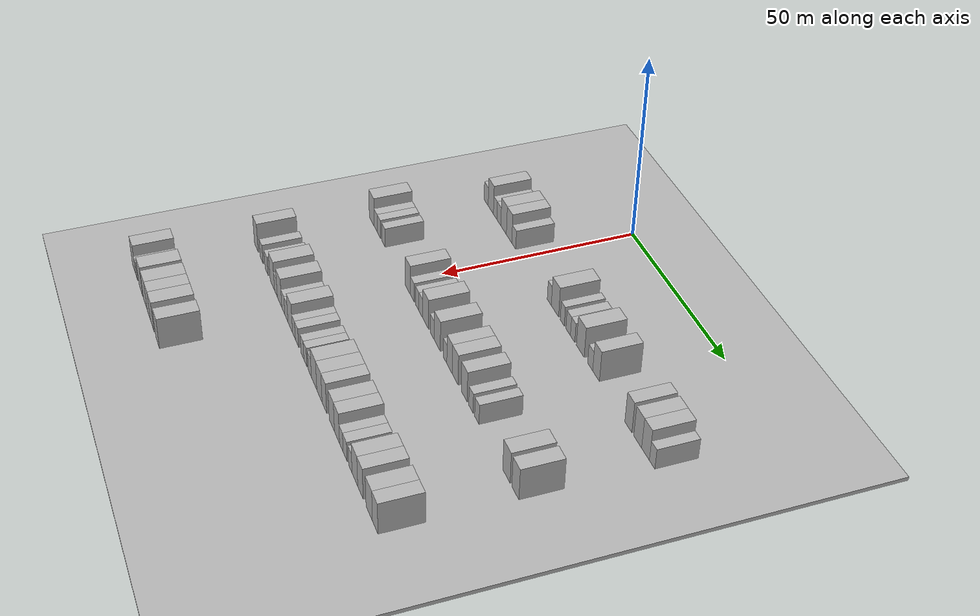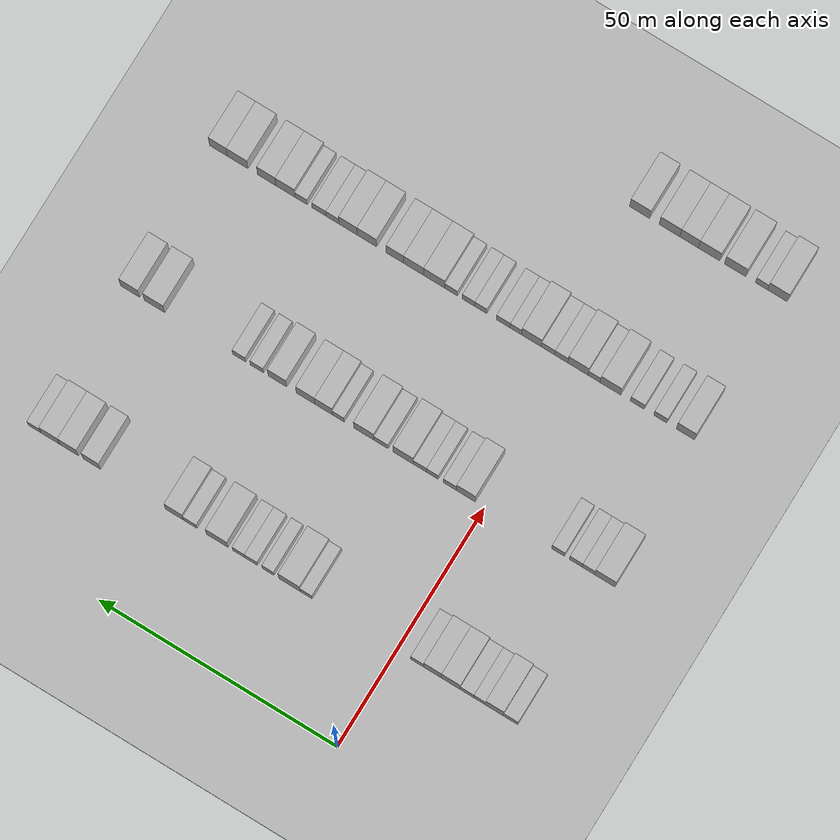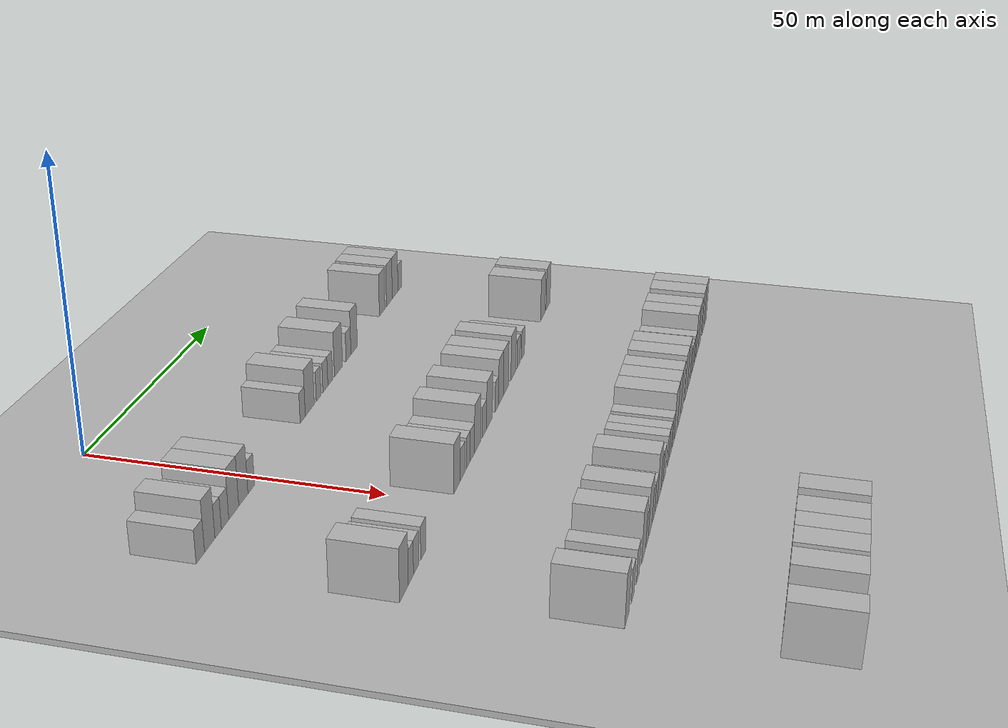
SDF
<sdf version="1.6">
 <world name="default">
  <include><name>ground_plane_1</name><uri>model://HANNAS_ground_plane</uri></include>
  <include>
   <name>ground_plane_2</name>
   <uri>model://HANNAS_ground_plane</uri>
   <pose>100 0 0  0 0 0</pose>
  </include>
  <model name="building_113">
   <static>1</static>
   <pose>25.0000 -23.7866 0 0.000000 0.000000 0.000000</pose>
   <link name="link">
    <pose>0 0 3.00 0 0 0</pose>
    <collision name="collision"><geometry><box><size>10.0000 2.9884 6.0000</size></box></geometry></collision>
    <visual name="visual">
     <cast_shadows>0</cast_shadows>
     <geometry><box><size>10.0000 2.9884 6.0000</size></box></geometry>
     <material>
      <script>
       <uri>model://HANNAS_wall/materials/scripts</uri>
       <uri>model://HANNAS_wall/materials/textures</uri>
       <name>vrc/HANNAS_wall</name>
      </script>
     </material>
    </visual>
   </link>
  </model>
  <model name="building_114">
   <static>1</static>
   <pose>25.0000 -20.4014 0 0.000000 0.000000 0.000000</pose>
   <link name="link">
    <pose>0 0 4.50 0 0 0</pose>
    <collision name="collision"><geometry><box><size>10.0000 3.7819 9.0000</size></box></geometry></collision>
    <visual name="visual">
     <cast_shadows>0</cast_shadows>
     <geometry><box><size>10.0000 3.7819 9.0000</size></box></geometry>
     <material>
      <script>
       <uri>model://HANNAS_wall/materials/scripts</uri>
       <uri>model://HANNAS_wall/materials/textures</uri>
       <name>vrc/HANNAS_wall</name>
      </script>
     </material>
    </visual>
   </link>
  </model>
  <model name="building_115">
   <static>1</static>
   <pose>25.0000 -17.2990 0 0.000000 0.000000 0.000000</pose>
   <link name="link">
    <pose>0 0 3.00 0 0 0</pose>
    <collision name="collision"><geometry><box><size>10.0000 2.4229 6.0000</size></box></geometry></collision>
    <visual name="visual">
     <cast_shadows>0</cast_shadows>
     <geometry><box><size>10.0000 2.4229 6.0000</size></box></geometry>
     <material>
      <script>
       <uri>model://HANNAS_wall/materials/scripts</uri>
       <uri>model://HANNAS_wall/materials/textures</uri>
       <name>vrc/HANNAS_wall</name>
      </script>
     </material>
    </visual>
   </link>
  </model>
  <model name="building_116">
   <static>1</static>
   <pose>25.0000 -14.6808 0 0.000000 0.000000 0.000000</pose>
   <link name="link">
    <pose>0 0 3.00 0 0 0</pose>
    <collision name="collision"><geometry><box><size>10.0000 2.8136 6.0000</size></box></geometry></collision>
    <visual name="visual">
     <cast_shadows>0</cast_shadows>
     <geometry><box><size>10.0000 2.8136 6.0000</size></box></geometry>
     <material>
      <script>
       <uri>model://HANNAS_wall/materials/scripts</uri>
       <uri>model://HANNAS_wall/materials/textures</uri>
       <name>vrc/HANNAS_wall</name>
      </script>
     </material>
    </visual>
   </link>
  </model>
  <model name="building_117">
   <static>1</static>
   <pose>25.0000 -11.3227 0 0.000000 0.000000 0.000000</pose>
   <link name="link">
    <pose>0 0 4.50 0 0 0</pose>
    <collision name="collision"><geometry><box><size>10.0000 3.9026 9.0000</size></box></geometry></collision>
    <visual name="visual">
     <cast_shadows>0</cast_shadows>
     <geometry><box><size>10.0000 3.9026 9.0000</size></box></geometry>
     <material>
      <script>
       <uri>model://HANNAS_wall/materials/scripts</uri>
       <uri>model://HANNAS_wall/materials/textures</uri>
       <name>vrc/HANNAS_wall</name>
      </script>
     </material>
    </visual>
   </link>
  </model>
  <model name="building_118">
   <static>1</static>
   <pose>25.0000 -7.5228 0 0.000000 0.000000 0.000000</pose>
   <link name="link">
    <pose>0 0 4.50 0 0 0</pose>
    <collision name="collision"><geometry><box><size>10.0000 3.6970 9.0000</size></box></geometry></collision>
    <visual name="visual">
     <cast_shadows>0</cast_shadows>
     <geometry><box><size>10.0000 3.6970 9.0000</size></box></geometry>
     <material>
      <script>
       <uri>model://HANNAS_wall/materials/scripts</uri>
       <uri>model://HANNAS_wall/materials/textures</uri>
       <name>vrc/HANNAS_wall</name>
      </script>
     </material>
    </visual>
   </link>
  </model>
  <model name="building_119">
   <static>1</static>
   <pose>25.0000 -4.3048 0 0.000000 0.000000 0.000000</pose>
   <link name="link">
    <pose>0 0 3.00 0 0 0</pose>
    <collision name="collision"><geometry><box><size>10.0000 2.7391 6.0000</size></box></geometry></collision>
    <visual name="visual">
     <cast_shadows>0</cast_shadows>
     <geometry><box><size>10.0000 2.7391 6.0000</size></box></geometry>
     <material>
      <script>
       <uri>model://HANNAS_wall/materials/scripts</uri>
       <uri>model://HANNAS_wall/materials/textures</uri>
       <name>vrc/HANNAS_wall</name>
      </script>
     </material>
    </visual>
   </link>
  </model>
  <model name="building_120">
   <static>1</static>
   <pose>25.0000 18.8678 0 0.000000 0.000000 0.000000</pose>
   <link name="link">
    <pose>0 0 3.00 0 0 0</pose>
    <collision name="collision"><geometry><box><size>10.0000 2.5354 6.0000</size></box></geometry></collision>
    <visual name="visual">
     <cast_shadows>0</cast_shadows>
     <geometry><box><size>10.0000 2.5354 6.0000</size></box></geometry>
     <material>
      <script>
       <uri>model://HANNAS_wall/materials/scripts</uri>
       <uri>model://HANNAS_wall/materials/textures</uri>
       <name>vrc/HANNAS_wall</name>
      </script>
     </material>
    </visual>
   </link>
  </model>
  <model name="building_121">
   <static>1</static>
   <pose>25.0000 22.3756 0 0.000000 0.000000 0.000000</pose>
   <link name="link">
    <pose>0 0 4.50 0 0 0</pose>
    <collision name="collision"><geometry><box><size>10.0000 4.4800 9.0000</size></box></geometry></collision>
    <visual name="visual">
     <cast_shadows>0</cast_shadows>
     <geometry><box><size>10.0000 4.4800 9.0000</size></box></geometry>
     <material>
      <script>
       <uri>model://HANNAS_wall/materials/scripts</uri>
       <uri>model://HANNAS_wall/materials/textures</uri>
       <name>vrc/HANNAS_wall</name>
      </script>
     </material>
    </visual>
   </link>
  </model>
  <model name="building_122">
   <static>1</static>
   <pose>25.0000 26.8315 0 0.000000 0.000000 0.000000</pose>
   <link name="link">
    <pose>0 0 3.00 0 0 0</pose>
    <collision name="collision"><geometry><box><size>10.0000 2.4318 6.0000</size></box></geometry></collision>
    <visual name="visual">
     <cast_shadows>0</cast_shadows>
     <geometry><box><size>10.0000 2.4318 6.0000</size></box></geometry>
     <material>
      <script>
       <uri>model://HANNAS_wall/materials/scripts</uri>
       <uri>model://HANNAS_wall/materials/textures</uri>
       <name>vrc/HANNAS_wall</name>
      </script>
     </material>
    </visual>
   </link>
  </model>
  <model name="building_123">
   <static>1</static>
   <pose>25.0000 30.3768 0 0.000000 0.000000 0.000000</pose>
   <link name="link">
    <pose>0 0 3.00 0 0 0</pose>
    <collision name="collision"><geometry><box><size>10.0000 2.6590 6.0000</size></box></geometry></collision>
    <visual name="visual">
     <cast_shadows>0</cast_shadows>
     <geometry><box><size>10.0000 2.6590 6.0000</size></box></geometry>
     <material>
      <script>
       <uri>model://HANNAS_wall/materials/scripts</uri>
       <uri>model://HANNAS_wall/materials/textures</uri>
       <name>vrc/HANNAS_wall</name>
      </script>
     </material>
    </visual>
   </link>
  </model>
  <model name="building_124">
   <static>1</static>
   <pose>25.0000 32.9831 0 0.000000 0.000000 0.000000</pose>
   <link name="link">
    <pose>0 0 3.00 0 0 0</pose>
    <collision name="collision"><geometry><box><size>10.0000 2.5535 6.0000</size></box></geometry></collision>
    <visual name="visual">
     <cast_shadows>0</cast_shadows>
     <geometry><box><size>10.0000 2.5535 6.0000</size></box></geometry>
     <material>
      <script>
       <uri>model://HANNAS_wall/materials/scripts</uri>
       <uri>model://HANNAS_wall/materials/textures</uri>
       <name>vrc/HANNAS_wall</name>
      </script>
     </material>
    </visual>
   </link>
  </model>
  <model name="building_125">
   <static>1</static>
   <pose>25.0000 37.5008 0 0.000000 0.000000 0.000000</pose>
   <link name="link">
    <pose>0 0 4.50 0 0 0</pose>
    <collision name="collision"><geometry><box><size>10.0000 4.4819 9.0000</size></box></geometry></collision>
    <visual name="visual">
     <cast_shadows>0</cast_shadows>
     <geometry><box><size>10.0000 4.4819 9.0000</size></box></geometry>
     <material>
      <script>
       <uri>model://HANNAS_wall/materials/scripts</uri>
       <uri>model://HANNAS_wall/materials/textures</uri>
       <name>vrc/HANNAS_wall</name>
      </script>
     </material>
    </visual>
   </link>
  </model>
  <model name="building_126">
   <static>1</static>
   <pose>25.0000 43.1531 0 0.000000 0.000000 0.000000</pose>
   <link name="link">
    <pose>0 0 3.00 0 0 0</pose>
    <collision name="collision"><geometry><box><size>10.0000 2.8227 6.0000</size></box></geometry></collision>
    <visual name="visual">
     <cast_shadows>0</cast_shadows>
     <geometry><box><size>10.0000 2.8227 6.0000</size></box></geometry>
     <material>
      <script>
       <uri>model://HANNAS_wall/materials/scripts</uri>
       <uri>model://HANNAS_wall/materials/textures</uri>
       <name>vrc/HANNAS_wall</name>
      </script>
     </material>
    </visual>
   </link>
  </model>
  <model name="building_127">
   <static>1</static>
   <pose>25.0000 46.4562 0 0.000000 0.000000 0.000000</pose>
   <link name="link">
    <pose>0 0 4.50 0 0 0</pose>
    <collision name="collision"><geometry><box><size>10.0000 3.7836 9.0000</size></box></geometry></collision>
    <visual name="visual">
     <cast_shadows>0</cast_shadows>
     <geometry><box><size>10.0000 3.7836 9.0000</size></box></geometry>
     <material>
      <script>
       <uri>model://HANNAS_wall/materials/scripts</uri>
       <uri>model://HANNAS_wall/materials/textures</uri>
       <name>vrc/HANNAS_wall</name>
      </script>
     </material>
    </visual>
   </link>
  </model>
  <model name="building_128">
   <static>1</static>
   <pose>25.0000 63.8147 0 0.000000 0.000000 0.000000</pose>
   <link name="link">
    <pose>0 0 4.50 0 0 0</pose>
    <collision name="collision"><geometry><box><size>10.0000 3.6445 9.0000</size></box></geometry></collision>
    <visual name="visual">
     <cast_shadows>0</cast_shadows>
     <geometry><box><size>10.0000 3.6445 9.0000</size></box></geometry>
     <material>
      <script>
       <uri>model://HANNAS_wall/materials/scripts</uri>
       <uri>model://HANNAS_wall/materials/textures</uri>
       <name>vrc/HANNAS_wall</name>
      </script>
     </material>
    </visual>
   </link>
  </model>
  <model name="building_129">
   <static>1</static>
   <pose>25.0000 68.6134 0 0.000000 0.000000 0.000000</pose>
   <link name="link">
    <pose>0 0 4.50 0 0 0</pose>
    <collision name="collision"><geometry><box><size>10.0000 3.9528 9.0000</size></box></geometry></collision>
    <visual name="visual">
     <cast_shadows>0</cast_shadows>
     <geometry><box><size>10.0000 3.9528 9.0000</size></box></geometry>
     <material>
      <script>
       <uri>model://HANNAS_wall/materials/scripts</uri>
       <uri>model://HANNAS_wall/materials/textures</uri>
       <name>vrc/HANNAS_wall</name>
      </script>
     </material>
    </visual>
   </link>
  </model>
  <model name="building_130">
   <static>1</static>
   <pose>25.0000 72.5409 0 0.000000 0.000000 0.000000</pose>
   <link name="link">
    <pose>0 0 4.50 0 0 0</pose>
    <collision name="collision"><geometry><box><size>10.0000 3.9024 9.0000</size></box></geometry></collision>
    <visual name="visual">
     <cast_shadows>0</cast_shadows>
     <geometry><box><size>10.0000 3.9024 9.0000</size></box></geometry>
     <material>
      <script>
       <uri>model://HANNAS_wall/materials/scripts</uri>
       <uri>model://HANNAS_wall/materials/textures</uri>
       <name>vrc/HANNAS_wall</name>
      </script>
     </material>
    </visual>
   </link>
  </model>
  <model name="building_131">
   <static>1</static>
   <pose>25.0000 75.8397 0 0.000000 0.000000 0.000000</pose>
   <link name="link">
    <pose>0 0 3.00 0 0 0</pose>
    <collision name="collision"><geometry><box><size>10.0000 2.6950 6.0000</size></box></geometry></collision>
    <visual name="visual">
     <cast_shadows>0</cast_shadows>
     <geometry><box><size>10.0000 2.6950 6.0000</size></box></geometry>
     <material>
      <script>
       <uri>model://HANNAS_wall/materials/scripts</uri>
       <uri>model://HANNAS_wall/materials/textures</uri>
       <name>vrc/HANNAS_wall</name>
      </script>
     </material>
    </visual>
   </link>
  </model>
  <model name="building_340">
   <static>1</static>
   <pose>55.0000 -25.1099 0 0.000000 0.000000 0.000000</pose>
   <link name="link">
    <pose>0 0 4.50 0 0 0</pose>
    <collision name="collision"><geometry><box><size>10.0000 4.2603 9.0000</size></box></geometry></collision>
    <visual name="visual">
     <cast_shadows>0</cast_shadows>
     <geometry><box><size>10.0000 4.2603 9.0000</size></box></geometry>
     <material>
      <script>
       <uri>model://HANNAS_wall/materials/scripts</uri>
       <uri>model://HANNAS_wall/materials/textures</uri>
       <name>vrc/HANNAS_wall</name>
      </script>
     </material>
    </visual>
   </link>
  </model>
  <model name="building_341">
   <static>1</static>
   <pose>55.0000 -21.6781 0 0.000000 0.000000 0.000000</pose>
   <link name="link">
    <pose>0 0 3.00 0 0 0</pose>
    <collision name="collision"><geometry><box><size>10.0000 2.6032 6.0000</size></box></geometry></collision>
    <visual name="visual">
     <cast_shadows>0</cast_shadows>
     <geometry><box><size>10.0000 2.6032 6.0000</size></box></geometry>
     <material>
      <script>
       <uri>model://HANNAS_wall/materials/scripts</uri>
       <uri>model://HANNAS_wall/materials/textures</uri>
       <name>vrc/HANNAS_wall</name>
      </script>
     </material>
    </visual>
   </link>
  </model>
  <model name="building_342">
   <static>1</static>
   <pose>55.0000 -19.0357 0 0.000000 0.000000 0.000000</pose>
   <link name="link">
    <pose>0 0 3.00 0 0 0</pose>
    <collision name="collision"><geometry><box><size>10.0000 2.6817 6.0000</size></box></geometry></collision>
    <visual name="visual">
     <cast_shadows>0</cast_shadows>
     <geometry><box><size>10.0000 2.6817 6.0000</size></box></geometry>
     <material>
      <script>
       <uri>model://HANNAS_wall/materials/scripts</uri>
       <uri>model://HANNAS_wall/materials/textures</uri>
       <name>vrc/HANNAS_wall</name>
      </script>
     </material>
    </visual>
   </link>
  </model>
  <model name="building_343">
   <static>1</static>
   <pose>55.0000 -15.3449 0 0.000000 0.000000 0.000000</pose>
   <link name="link">
    <pose>0 0 3.00 0 0 0</pose>
    <collision name="collision"><geometry><box><size>10.0000 2.7000 6.0000</size></box></geometry></collision>
    <visual name="visual">
     <cast_shadows>0</cast_shadows>
     <geometry><box><size>10.0000 2.7000 6.0000</size></box></geometry>
     <material>
      <script>
       <uri>model://HANNAS_wall/materials/scripts</uri>
       <uri>model://HANNAS_wall/materials/textures</uri>
       <name>vrc/HANNAS_wall</name>
      </script>
     </material>
    </visual>
   </link>
  </model>
  <model name="building_344">
   <static>1</static>
   <pose>55.0000 3.9220 0 0.000000 0.000000 0.000000</pose>
   <link name="link">
    <pose>0 0 4.50 0 0 0</pose>
    <collision name="collision"><geometry><box><size>10.0000 3.9446 9.0000</size></box></geometry></collision>
    <visual name="visual">
     <cast_shadows>0</cast_shadows>
     <geometry><box><size>10.0000 3.9446 9.0000</size></box></geometry>
     <material>
      <script>
       <uri>model://HANNAS_wall/materials/scripts</uri>
       <uri>model://HANNAS_wall/materials/textures</uri>
       <name>vrc/HANNAS_wall</name>
      </script>
     </material>
    </visual>
   </link>
  </model>
  <model name="building_345">
   <static>1</static>
   <pose>55.0000 7.2914 0 0.000000 0.000000 0.000000</pose>
   <link name="link">
    <pose>0 0 3.00 0 0 0</pose>
    <collision name="collision"><geometry><box><size>10.0000 2.7942 6.0000</size></box></geometry></collision>
    <visual name="visual">
     <cast_shadows>0</cast_shadows>
     <geometry><box><size>10.0000 2.7942 6.0000</size></box></geometry>
     <material>
      <script>
       <uri>model://HANNAS_wall/materials/scripts</uri>
       <uri>model://HANNAS_wall/materials/textures</uri>
       <name>vrc/HANNAS_wall</name>
      </script>
     </material>
    </visual>
   </link>
  </model>
  <model name="building_346">
   <static>1</static>
   <pose>55.0000 10.9411 0 0.000000 0.000000 0.000000</pose>
   <link name="link">
    <pose>0 0 3.00 0 0 0</pose>
    <collision name="collision"><geometry><box><size>10.0000 2.5052 6.0000</size></box></geometry></collision>
    <visual name="visual">
     <cast_shadows>0</cast_shadows>
     <geometry><box><size>10.0000 2.5052 6.0000</size></box></geometry>
     <material>
      <script>
       <uri>model://HANNAS_wall/materials/scripts</uri>
       <uri>model://HANNAS_wall/materials/textures</uri>
       <name>vrc/HANNAS_wall</name>
      </script>
     </material>
    </visual>
   </link>
  </model>
  <model name="building_347">
   <static>1</static>
   <pose>55.0000 13.5855 0 0.000000 0.000000 0.000000</pose>
   <link name="link">
    <pose>0 0 3.00 0 0 0</pose>
    <collision name="collision"><geometry><box><size>10.0000 2.7836 6.0000</size></box></geometry></collision>
    <visual name="visual">
     <cast_shadows>0</cast_shadows>
     <geometry><box><size>10.0000 2.7836 6.0000</size></box></geometry>
     <material>
      <script>
       <uri>model://HANNAS_wall/materials/scripts</uri>
       <uri>model://HANNAS_wall/materials/textures</uri>
       <name>vrc/HANNAS_wall</name>
      </script>
     </material>
    </visual>
   </link>
  </model>
  <model name="building_348">
   <static>1</static>
   <pose>55.0000 17.0925 0 0.000000 0.000000 0.000000</pose>
   <link name="link">
    <pose>0 0 4.50 0 0 0</pose>
    <collision name="collision"><geometry><box><size>10.0000 4.2303 9.0000</size></box></geometry></collision>
    <visual name="visual">
     <cast_shadows>0</cast_shadows>
     <geometry><box><size>10.0000 4.2303 9.0000</size></box></geometry>
     <material>
      <script>
       <uri>model://HANNAS_wall/materials/scripts</uri>
       <uri>model://HANNAS_wall/materials/textures</uri>
       <name>vrc/HANNAS_wall</name>
      </script>
     </material>
    </visual>
   </link>
  </model>
  <model name="building_349">
   <static>1</static>
   <pose>55.0000 21.6982 0 0.000000 0.000000 0.000000</pose>
   <link name="link">
    <pose>0 0 3.00 0 0 0</pose>
    <collision name="collision"><geometry><box><size>10.0000 2.9812 6.0000</size></box></geometry></collision>
    <visual name="visual">
     <cast_shadows>0</cast_shadows>
     <geometry><box><size>10.0000 2.9812 6.0000</size></box></geometry>
     <material>
      <script>
       <uri>model://HANNAS_wall/materials/scripts</uri>
       <uri>model://HANNAS_wall/materials/textures</uri>
       <name>vrc/HANNAS_wall</name>
      </script>
     </material>
    </visual>
   </link>
  </model>
  <model name="building_350">
   <static>1</static>
   <pose>55.0000 25.2922 0 0.000000 0.000000 0.000000</pose>
   <link name="link">
    <pose>0 0 4.50 0 0 0</pose>
    <collision name="collision"><geometry><box><size>10.0000 4.2067 9.0000</size></box></geometry></collision>
    <visual name="visual">
     <cast_shadows>0</cast_shadows>
     <geometry><box><size>10.0000 4.2067 9.0000</size></box></geometry>
     <material>
      <script>
       <uri>model://HANNAS_wall/materials/scripts</uri>
       <uri>model://HANNAS_wall/materials/textures</uri>
       <name>vrc/HANNAS_wall</name>
      </script>
     </material>
    </visual>
   </link>
  </model>
  <model name="building_351">
   <static>1</static>
   <pose>55.0000 30.6409 0 0.000000 0.000000 0.000000</pose>
   <link name="link">
    <pose>0 0 3.00 0 0 0</pose>
    <collision name="collision"><geometry><box><size>10.0000 2.4909 6.0000</size></box></geometry></collision>
    <visual name="visual">
     <cast_shadows>0</cast_shadows>
     <geometry><box><size>10.0000 2.4909 6.0000</size></box></geometry>
     <material>
      <script>
       <uri>model://HANNAS_wall/materials/scripts</uri>
       <uri>model://HANNAS_wall/materials/textures</uri>
       <name>vrc/HANNAS_wall</name>
      </script>
     </material>
    </visual>
   </link>
  </model>
  <model name="building_352">
   <static>1</static>
   <pose>55.0000 33.7163 0 0.000000 0.000000 0.000000</pose>
   <link name="link">
    <pose>0 0 4.50 0 0 0</pose>
    <collision name="collision"><geometry><box><size>10.0000 3.6598 9.0000</size></box></geometry></collision>
    <visual name="visual">
     <cast_shadows>0</cast_shadows>
     <geometry><box><size>10.0000 3.6598 9.0000</size></box></geometry>
     <material>
      <script>
       <uri>model://HANNAS_wall/materials/scripts</uri>
       <uri>model://HANNAS_wall/materials/textures</uri>
       <name>vrc/HANNAS_wall</name>
      </script>
     </material>
    </visual>
   </link>
  </model>
  <model name="building_353">
   <static>1</static>
   <pose>55.0000 37.5068 0 0.000000 0.000000 0.000000</pose>
   <link name="link">
    <pose>0 0 4.50 0 0 0</pose>
    <collision name="collision"><geometry><box><size>10.0000 3.9213 9.0000</size></box></geometry></collision>
    <visual name="visual">
     <cast_shadows>0</cast_shadows>
     <geometry><box><size>10.0000 3.9213 9.0000</size></box></geometry>
     <material>
      <script>
       <uri>model://HANNAS_wall/materials/scripts</uri>
       <uri>model://HANNAS_wall/materials/textures</uri>
       <name>vrc/HANNAS_wall</name>
      </script>
     </material>
    </visual>
   </link>
  </model>
  <model name="building_354">
   <static>1</static>
   <pose>55.0000 43.4093 0 0.000000 0.000000 0.000000</pose>
   <link name="link">
    <pose>0 0 4.50 0 0 0</pose>
    <collision name="collision"><geometry><box><size>10.0000 3.8836 9.0000</size></box></geometry></collision>
    <visual name="visual">
     <cast_shadows>0</cast_shadows>
     <geometry><box><size>10.0000 3.8836 9.0000</size></box></geometry>
     <material>
      <script>
       <uri>model://HANNAS_wall/materials/scripts</uri>
       <uri>model://HANNAS_wall/materials/textures</uri>
       <name>vrc/HANNAS_wall</name>
      </script>
     </material>
    </visual>
   </link>
  </model>
  <model name="building_355">
   <static>1</static>
   <pose>55.0000 47.7272 0 0.000000 0.000000 0.000000</pose>
   <link name="link">
    <pose>0 0 3.00 0 0 0</pose>
    <collision name="collision"><geometry><box><size>10.0000 2.7521 6.0000</size></box></geometry></collision>
    <visual name="visual">
     <cast_shadows>0</cast_shadows>
     <geometry><box><size>10.0000 2.7521 6.0000</size></box></geometry>
     <material>
      <script>
       <uri>model://HANNAS_wall/materials/scripts</uri>
       <uri>model://HANNAS_wall/materials/textures</uri>
       <name>vrc/HANNAS_wall</name>
      </script>
     </material>
    </visual>
   </link>
  </model>
  <model name="building_356">
   <static>1</static>
   <pose>55.0000 51.4668 0 0.000000 0.000000 0.000000</pose>
   <link name="link">
    <pose>0 0 3.00 0 0 0</pose>
    <collision name="collision"><geometry><box><size>10.0000 2.7271 6.0000</size></box></geometry></collision>
    <visual name="visual">
     <cast_shadows>0</cast_shadows>
     <geometry><box><size>10.0000 2.7271 6.0000</size></box></geometry>
     <material>
      <script>
       <uri>model://HANNAS_wall/materials/scripts</uri>
       <uri>model://HANNAS_wall/materials/textures</uri>
       <name>vrc/HANNAS_wall</name>
      </script>
     </material>
    </visual>
   </link>
  </model>
  <model name="building_357">
   <static>1</static>
   <pose>55.0000 69.2820 0 0.000000 0.000000 0.000000</pose>
   <link name="link">
    <pose>0 0 4.50 0 0 0</pose>
    <collision name="collision"><geometry><box><size>10.0000 4.3011 9.0000</size></box></geometry></collision>
    <visual name="visual">
     <cast_shadows>0</cast_shadows>
     <geometry><box><size>10.0000 4.3011 9.0000</size></box></geometry>
     <material>
      <script>
       <uri>model://HANNAS_wall/materials/scripts</uri>
       <uri>model://HANNAS_wall/materials/textures</uri>
       <name>vrc/HANNAS_wall</name>
      </script>
     </material>
    </visual>
   </link>
  </model>
  <model name="building_358">
   <static>1</static>
   <pose>55.0000 74.4331 0 0.000000 0.000000 0.000000</pose>
   <link name="link">
    <pose>0 0 4.50 0 0 0</pose>
    <collision name="collision"><geometry><box><size>10.0000 4.0013 9.0000</size></box></geometry></collision>
    <visual name="visual">
     <cast_shadows>0</cast_shadows>
     <geometry><box><size>10.0000 4.0013 9.0000</size></box></geometry>
     <material>
      <script>
       <uri>model://HANNAS_wall/materials/scripts</uri>
       <uri>model://HANNAS_wall/materials/textures</uri>
       <name>vrc/HANNAS_wall</name>
      </script>
     </material>
    </visual>
   </link>
  </model>
  <model name="building_567">
   <static>1</static>
   <pose>85.0000 -23.7119 0 0.000000 0.000000 0.000000</pose>
   <link name="link">
    <pose>0 0 4.50 0 0 0</pose>
    <collision name="collision"><geometry><box><size>10.0000 3.8070 9.0000</size></box></geometry></collision>
    <visual name="visual">
     <cast_shadows>0</cast_shadows>
     <geometry><box><size>10.0000 3.8070 9.0000</size></box></geometry>
     <material>
      <script>
       <uri>model://HANNAS_wall/materials/scripts</uri>
       <uri>model://HANNAS_wall/materials/textures</uri>
       <name>vrc/HANNAS_wall</name>
      </script>
     </material>
    </visual>
   </link>
  </model>
  <model name="building_568">
   <static>1</static>
   <pose>85.0000 -18.4425 0 0.000000 0.000000 0.000000</pose>
   <link name="link">
    <pose>0 0 3.00 0 0 0</pose>
    <collision name="collision"><geometry><box><size>10.0000 2.7317 6.0000</size></box></geometry></collision>
    <visual name="visual">
     <cast_shadows>0</cast_shadows>
     <geometry><box><size>10.0000 2.7317 6.0000</size></box></geometry>
     <material>
      <script>
       <uri>model://HANNAS_wall/materials/scripts</uri>
       <uri>model://HANNAS_wall/materials/textures</uri>
       <name>vrc/HANNAS_wall</name>
      </script>
     </material>
    </visual>
   </link>
  </model>
  <model name="building_569">
   <static>1</static>
   <pose>85.0000 -13.6186 0 0.000000 0.000000 0.000000</pose>
   <link name="link">
    <pose>0 0 3.00 0 0 0</pose>
    <collision name="collision"><geometry><box><size>10.0000 2.9162 6.0000</size></box></geometry></collision>
    <visual name="visual">
     <cast_shadows>0</cast_shadows>
     <geometry><box><size>10.0000 2.9162 6.0000</size></box></geometry>
     <material>
      <script>
       <uri>model://HANNAS_wall/materials/scripts</uri>
       <uri>model://HANNAS_wall/materials/textures</uri>
       <name>vrc/HANNAS_wall</name>
      </script>
     </material>
    </visual>
   </link>
  </model>
  <model name="building_570">
   <static>1</static>
   <pose>85.0000 -8.0049 0 0.000000 0.000000 0.000000</pose>
   <link name="link">
    <pose>0 0 4.50 0 0 0</pose>
    <collision name="collision"><geometry><box><size>10.0000 4.3114 9.0000</size></box></geometry></collision>
    <visual name="visual">
     <cast_shadows>0</cast_shadows>
     <geometry><box><size>10.0000 4.3114 9.0000</size></box></geometry>
     <material>
      <script>
       <uri>model://HANNAS_wall/materials/scripts</uri>
       <uri>model://HANNAS_wall/materials/textures</uri>
       <name>vrc/HANNAS_wall</name>
      </script>
     </material>
    </visual>
   </link>
  </model>
  <model name="building_571">
   <static>1</static>
   <pose>85.0000 -4.5874 0 0.000000 0.000000 0.000000</pose>
   <link name="link">
    <pose>0 0 3.00 0 0 0</pose>
    <collision name="collision"><geometry><box><size>10.0000 2.5236 6.0000</size></box></geometry></collision>
    <visual name="visual">
     <cast_shadows>0</cast_shadows>
     <geometry><box><size>10.0000 2.5236 6.0000</size></box></geometry>
     <material>
      <script>
       <uri>model://HANNAS_wall/materials/scripts</uri>
       <uri>model://HANNAS_wall/materials/textures</uri>
       <name>vrc/HANNAS_wall</name>
      </script>
     </material>
    </visual>
   </link>
  </model>
  <model name="building_572">
   <static>1</static>
   <pose>85.0000 -1.2102 0 0.000000 0.000000 0.000000</pose>
   <link name="link">
    <pose>0 0 4.50 0 0 0</pose>
    <collision name="collision"><geometry><box><size>10.0000 4.2308 9.0000</size></box></geometry></collision>
    <visual name="visual">
     <cast_shadows>0</cast_shadows>
     <geometry><box><size>10.0000 4.2308 9.0000</size></box></geometry>
     <material>
      <script>
       <uri>model://HANNAS_wall/materials/scripts</uri>
       <uri>model://HANNAS_wall/materials/textures</uri>
       <name>vrc/HANNAS_wall</name>
      </script>
     </material>
    </visual>
   </link>
  </model>
  <model name="building_573">
   <static>1</static>
   <pose>85.0000 2.2852 0 0.000000 0.000000 0.000000</pose>
   <link name="link">
    <pose>0 0 3.00 0 0 0</pose>
    <collision name="collision"><geometry><box><size>10.0000 2.7598 6.0000</size></box></geometry></collision>
    <visual name="visual">
     <cast_shadows>0</cast_shadows>
     <geometry><box><size>10.0000 2.7598 6.0000</size></box></geometry>
     <material>
      <script>
       <uri>model://HANNAS_wall/materials/scripts</uri>
       <uri>model://HANNAS_wall/materials/textures</uri>
       <name>vrc/HANNAS_wall</name>
      </script>
     </material>
    </visual>
   </link>
  </model>
  <model name="building_574">
   <static>1</static>
   <pose>85.0000 5.0741 0 0.000000 0.000000 0.000000</pose>
   <link name="link">
    <pose>0 0 3.00 0 0 0</pose>
    <collision name="collision"><geometry><box><size>10.0000 2.8181 6.0000</size></box></geometry></collision>
    <visual name="visual">
     <cast_shadows>0</cast_shadows>
     <geometry><box><size>10.0000 2.8181 6.0000</size></box></geometry>
     <material>
      <script>
       <uri>model://HANNAS_wall/materials/scripts</uri>
       <uri>model://HANNAS_wall/materials/textures</uri>
       <name>vrc/HANNAS_wall</name>
      </script>
     </material>
    </visual>
   </link>
  </model>
  <model name="building_575">
   <static>1</static>
   <pose>85.0000 8.5570 0 0.000000 0.000000 0.000000</pose>
   <link name="link">
    <pose>0 0 4.50 0 0 0</pose>
    <collision name="collision"><geometry><box><size>10.0000 4.1477 9.0000</size></box></geometry></collision>
    <visual name="visual">
     <cast_shadows>0</cast_shadows>
     <geometry><box><size>10.0000 4.1477 9.0000</size></box></geometry>
     <material>
      <script>
       <uri>model://HANNAS_wall/materials/scripts</uri>
       <uri>model://HANNAS_wall/materials/textures</uri>
       <name>vrc/HANNAS_wall</name>
      </script>
     </material>
    </visual>
   </link>
  </model>
  <model name="building_576">
   <static>1</static>
   <pose>85.0000 11.8322 0 0.000000 0.000000 0.000000</pose>
   <link name="link">
    <pose>0 0 3.00 0 0 0</pose>
    <collision name="collision"><geometry><box><size>10.0000 2.4026 6.0000</size></box></geometry></collision>
    <visual name="visual">
     <cast_shadows>0</cast_shadows>
     <geometry><box><size>10.0000 2.4026 6.0000</size></box></geometry>
     <material>
      <script>
       <uri>model://HANNAS_wall/materials/scripts</uri>
       <uri>model://HANNAS_wall/materials/textures</uri>
       <name>vrc/HANNAS_wall</name>
      </script>
     </material>
    </visual>
   </link>
  </model>
  <model name="building_577">
   <static>1</static>
   <pose>85.0000 14.4757 0 0.000000 0.000000 0.000000</pose>
   <link name="link">
    <pose>0 0 3.00 0 0 0</pose>
    <collision name="collision"><geometry><box><size>10.0000 2.8843 6.0000</size></box></geometry></collision>
    <visual name="visual">
     <cast_shadows>0</cast_shadows>
     <geometry><box><size>10.0000 2.8843 6.0000</size></box></geometry>
     <material>
      <script>
       <uri>model://HANNAS_wall/materials/scripts</uri>
       <uri>model://HANNAS_wall/materials/textures</uri>
       <name>vrc/HANNAS_wall</name>
      </script>
     </material>
    </visual>
   </link>
  </model>
  <model name="building_578">
   <static>1</static>
   <pose>85.0000 19.1869 0 0.000000 0.000000 0.000000</pose>
   <link name="link">
    <pose>0 0 3.00 0 0 0</pose>
    <collision name="collision"><geometry><box><size>10.0000 2.5382 6.0000</size></box></geometry></collision>
    <visual name="visual">
     <cast_shadows>0</cast_shadows>
     <geometry><box><size>10.0000 2.5382 6.0000</size></box></geometry>
     <material>
      <script>
       <uri>model://HANNAS_wall/materials/scripts</uri>
       <uri>model://HANNAS_wall/materials/textures</uri>
       <name>vrc/HANNAS_wall</name>
      </script>
     </material>
    </visual>
   </link>
  </model>
  <model name="building_579">
   <static>1</static>
   <pose>85.0000 21.7587 0 0.000000 0.000000 0.000000</pose>
   <link name="link">
    <pose>0 0 3.00 0 0 0</pose>
    <collision name="collision"><geometry><box><size>10.0000 2.6054 6.0000</size></box></geometry></collision>
    <visual name="visual">
     <cast_shadows>0</cast_shadows>
     <geometry><box><size>10.0000 2.6054 6.0000</size></box></geometry>
     <material>
      <script>
       <uri>model://HANNAS_wall/materials/scripts</uri>
       <uri>model://HANNAS_wall/materials/textures</uri>
       <name>vrc/HANNAS_wall</name>
      </script>
     </material>
    </visual>
   </link>
  </model>
  <model name="building_580">
   <static>1</static>
   <pose>85.0000 25.4090 0 0.000000 0.000000 0.000000</pose>
   <link name="link">
    <pose>0 0 3.00 0 0 0</pose>
    <collision name="collision"><geometry><box><size>10.0000 2.6952 6.0000</size></box></geometry></collision>
    <visual name="visual">
     <cast_shadows>0</cast_shadows>
     <geometry><box><size>10.0000 2.6952 6.0000</size></box></geometry>
     <material>
      <script>
       <uri>model://HANNAS_wall/materials/scripts</uri>
       <uri>model://HANNAS_wall/materials/textures</uri>
       <name>vrc/HANNAS_wall</name>
      </script>
     </material>
    </visual>
   </link>
  </model>
  <model name="building_581">
   <static>1</static>
   <pose>85.0000 28.9797 0 0.000000 0.000000 0.000000</pose>
   <link name="link">
    <pose>0 0 4.50 0 0 0</pose>
    <collision name="collision"><geometry><box><size>10.0000 4.4460 9.0000</size></box></geometry></collision>
    <visual name="visual">
     <cast_shadows>0</cast_shadows>
     <geometry><box><size>10.0000 4.4460 9.0000</size></box></geometry>
     <material>
      <script>
       <uri>model://HANNAS_wall/materials/scripts</uri>
       <uri>model://HANNAS_wall/materials/textures</uri>
       <name>vrc/HANNAS_wall</name>
      </script>
     </material>
    </visual>
   </link>
  </model>
  <model name="building_582">
   <static>1</static>
   <pose>85.0000 33.3121 0 0.000000 0.000000 0.000000</pose>
   <link name="link">
    <pose>0 0 4.50 0 0 0</pose>
    <collision name="collision"><geometry><box><size>10.0000 4.2187 9.0000</size></box></geometry></collision>
    <visual name="visual">
     <cast_shadows>0</cast_shadows>
     <geometry><box><size>10.0000 4.2187 9.0000</size></box></geometry>
     <material>
      <script>
       <uri>model://HANNAS_wall/materials/scripts</uri>
       <uri>model://HANNAS_wall/materials/textures</uri>
       <name>vrc/HANNAS_wall</name>
      </script>
     </material>
    </visual>
   </link>
  </model>
  <model name="building_583">
   <static>1</static>
   <pose>85.0000 37.2357 0 0.000000 0.000000 0.000000</pose>
   <link name="link">
    <pose>0 0 4.50 0 0 0</pose>
    <collision name="collision"><geometry><box><size>10.0000 3.6285 9.0000</size></box></geometry></collision>
    <visual name="visual">
     <cast_shadows>0</cast_shadows>
     <geometry><box><size>10.0000 3.6285 9.0000</size></box></geometry>
     <material>
      <script>
       <uri>model://HANNAS_wall/materials/scripts</uri>
       <uri>model://HANNAS_wall/materials/textures</uri>
       <name>vrc/HANNAS_wall</name>
      </script>
     </material>
    </visual>
   </link>
  </model>
  <model name="building_584">
   <static>1</static>
   <pose>85.0000 43.0997 0 0.000000 0.000000 0.000000</pose>
   <link name="link">
    <pose>0 0 4.50 0 0 0</pose>
    <collision name="collision"><geometry><box><size>10.0000 4.0996 9.0000</size></box></geometry></collision>
    <visual name="visual">
     <cast_shadows>0</cast_shadows>
     <geometry><box><size>10.0000 4.0996 9.0000</size></box></geometry>
     <material>
      <script>
       <uri>model://HANNAS_wall/materials/scripts</uri>
       <uri>model://HANNAS_wall/materials/textures</uri>
       <name>vrc/HANNAS_wall</name>
      </script>
     </material>
    </visual>
   </link>
  </model>
  <model name="building_585">
   <static>1</static>
   <pose>85.0000 47.0672 0 0.000000 0.000000 0.000000</pose>
   <link name="link">
    <pose>0 0 4.50 0 0 0</pose>
    <collision name="collision"><geometry><box><size>10.0000 3.8354 9.0000</size></box></geometry></collision>
    <visual name="visual">
     <cast_shadows>0</cast_shadows>
     <geometry><box><size>10.0000 3.8354 9.0000</size></box></geometry>
     <material>
      <script>
       <uri>model://HANNAS_wall/materials/scripts</uri>
       <uri>model://HANNAS_wall/materials/textures</uri>
       <name>vrc/HANNAS_wall</name>
      </script>
     </material>
    </visual>
   </link>
  </model>
  <model name="building_586">
   <static>1</static>
   <pose>85.0000 50.3280 0 0.000000 0.000000 0.000000</pose>
   <link name="link">
    <pose>0 0 3.00 0 0 0</pose>
    <collision name="collision"><geometry><box><size>10.0000 2.6862 6.0000</size></box></geometry></collision>
    <visual name="visual">
     <cast_shadows>0</cast_shadows>
     <geometry><box><size>10.0000 2.6862 6.0000</size></box></geometry>
     <material>
      <script>
       <uri>model://HANNAS_wall/materials/scripts</uri>
       <uri>model://HANNAS_wall/materials/textures</uri>
       <name>vrc/HANNAS_wall</name>
      </script>
     </material>
    </visual>
   </link>
  </model>
  <model name="building_587">
   <static>1</static>
   <pose>85.0000 53.1605 0 0.000000 0.000000 0.000000</pose>
   <link name="link">
    <pose>0 0 3.00 0 0 0</pose>
    <collision name="collision"><geometry><box><size>10.0000 2.9788 6.0000</size></box></geometry></collision>
    <visual name="visual">
     <cast_shadows>0</cast_shadows>
     <geometry><box><size>10.0000 2.9788 6.0000</size></box></geometry>
     <material>
      <script>
       <uri>model://HANNAS_wall/materials/scripts</uri>
       <uri>model://HANNAS_wall/materials/textures</uri>
       <name>vrc/HANNAS_wall</name>
      </script>
     </material>
    </visual>
   </link>
  </model>
  <model name="building_588">
   <static>1</static>
   <pose>85.0000 56.9431 0 0.000000 0.000000 0.000000</pose>
   <link name="link">
    <pose>0 0 3.00 0 0 0</pose>
    <collision name="collision"><geometry><box><size>10.0000 2.5865 6.0000</size></box></geometry></collision>
    <visual name="visual">
     <cast_shadows>0</cast_shadows>
     <geometry><box><size>10.0000 2.5865 6.0000</size></box></geometry>
     <material>
      <script>
       <uri>model://HANNAS_wall/materials/scripts</uri>
       <uri>model://HANNAS_wall/materials/textures</uri>
       <name>vrc/HANNAS_wall</name>
      </script>
     </material>
    </visual>
   </link>
  </model>
  <model name="building_589">
   <static>1</static>
   <pose>85.0000 60.2708 0 0.000000 0.000000 0.000000</pose>
   <link name="link">
    <pose>0 0 4.50 0 0 0</pose>
    <collision name="collision"><geometry><box><size>10.0000 4.0688 9.0000</size></box></geometry></collision>
    <visual name="visual">
     <cast_shadows>0</cast_shadows>
     <geometry><box><size>10.0000 4.0688 9.0000</size></box></geometry>
     <material>
      <script>
       <uri>model://HANNAS_wall/materials/scripts</uri>
       <uri>model://HANNAS_wall/materials/textures</uri>
       <name>vrc/HANNAS_wall</name>
      </script>
     </material>
    </visual>
   </link>
  </model>
  <model name="building_590">
   <static>1</static>
   <pose>85.0000 64.2265 0 0.000000 0.000000 0.000000</pose>
   <link name="link">
    <pose>0 0 4.50 0 0 0</pose>
    <collision name="collision"><geometry><box><size>10.0000 3.8426 9.0000</size></box></geometry></collision>
    <visual name="visual">
     <cast_shadows>0</cast_shadows>
     <geometry><box><size>10.0000 3.8426 9.0000</size></box></geometry>
     <material>
      <script>
       <uri>model://HANNAS_wall/materials/scripts</uri>
       <uri>model://HANNAS_wall/materials/textures</uri>
       <name>vrc/HANNAS_wall</name>
      </script>
     </material>
    </visual>
   </link>
  </model>
  <model name="building_591">
   <static>1</static>
   <pose>85.0000 70.3396 0 0.000000 0.000000 0.000000</pose>
   <link name="link">
    <pose>0 0 4.50 0 0 0</pose>
    <collision name="collision"><geometry><box><size>10.0000 4.3836 9.0000</size></box></geometry></collision>
    <visual name="visual">
     <cast_shadows>0</cast_shadows>
     <geometry><box><size>10.0000 4.3836 9.0000</size></box></geometry>
     <material>
      <script>
       <uri>model://HANNAS_wall/materials/scripts</uri>
       <uri>model://HANNAS_wall/materials/textures</uri>
       <name>vrc/HANNAS_wall</name>
      </script>
     </material>
    </visual>
   </link>
  </model>
  <model name="building_592">
   <static>1</static>
   <pose>85.0000 74.4029 0 0.000000 0.000000 0.000000</pose>
   <link name="link">
    <pose>0 0 4.50 0 0 0</pose>
    <collision name="collision"><geometry><box><size>10.0000 3.7431 9.0000</size></box></geometry></collision>
    <visual name="visual">
     <cast_shadows>0</cast_shadows>
     <geometry><box><size>10.0000 3.7431 9.0000</size></box></geometry>
     <material>
      <script>
       <uri>model://HANNAS_wall/materials/scripts</uri>
       <uri>model://HANNAS_wall/materials/textures</uri>
       <name>vrc/HANNAS_wall</name>
      </script>
     </material>
    </visual>
   </link>
  </model>
  <model name="building_800">
   <static>1</static>
   <pose>115.0000 -24.7660 0 0.000000 0.000000 0.000000</pose>
   <link name="link">
    <pose>0 0 4.50 0 0 0</pose>
    <collision name="collision"><geometry><box><size>10.0000 4.1132 9.0000</size></box></geometry></collision>
    <visual name="visual">
     <cast_shadows>0</cast_shadows>
     <geometry><box><size>10.0000 4.1132 9.0000</size></box></geometry>
     <material>
      <script>
       <uri>model://HANNAS_wall/materials/scripts</uri>
       <uri>model://HANNAS_wall/materials/textures</uri>
       <name>vrc/HANNAS_wall</name>
      </script>
     </material>
    </visual>
   </link>
  </model>
  <model name="building_801">
   <static>1</static>
   <pose>115.0000 -21.4295 0 0.000000 0.000000 0.000000</pose>
   <link name="link">
    <pose>0 0 3.00 0 0 0</pose>
    <collision name="collision"><geometry><box><size>10.0000 2.5598 6.0000</size></box></geometry></collision>
    <visual name="visual">
     <cast_shadows>0</cast_shadows>
     <geometry><box><size>10.0000 2.5598 6.0000</size></box></geometry>
     <material>
      <script>
       <uri>model://HANNAS_wall/materials/scripts</uri>
       <uri>model://HANNAS_wall/materials/textures</uri>
       <name>vrc/HANNAS_wall</name>
      </script>
     </material>
    </visual>
   </link>
  </model>
  <model name="building_802">
   <static>1</static>
   <pose>115.0000 -15.9170 0 0.000000 0.000000 0.000000</pose>
   <link name="link">
    <pose>0 0 4.50 0 0 0</pose>
    <collision name="collision"><geometry><box><size>10.0000 4.4651 9.0000</size></box></geometry></collision>
    <visual name="visual">
     <cast_shadows>0</cast_shadows>
     <geometry><box><size>10.0000 4.4651 9.0000</size></box></geometry>
     <material>
      <script>
       <uri>model://HANNAS_wall/materials/scripts</uri>
       <uri>model://HANNAS_wall/materials/textures</uri>
       <name>vrc/HANNAS_wall</name>
      </script>
     </material>
    </visual>
   </link>
  </model>
  <model name="building_803">
   <static>1</static>
   <pose>115.0000 -10.4571 0 0.000000 0.000000 0.000000</pose>
   <link name="link">
    <pose>0 0 4.50 0 0 0</pose>
    <collision name="collision"><geometry><box><size>10.0000 4.4547 9.0000</size></box></geometry></collision>
    <visual name="visual">
     <cast_shadows>0</cast_shadows>
     <geometry><box><size>10.0000 4.4547 9.0000</size></box></geometry>
     <material>
      <script>
       <uri>model://HANNAS_wall/materials/scripts</uri>
       <uri>model://HANNAS_wall/materials/textures</uri>
       <name>vrc/HANNAS_wall</name>
      </script>
     </material>
    </visual>
   </link>
  </model>
  <model name="building_804">
   <static>1</static>
   <pose>115.0000 -6.2838 0 0.000000 0.000000 0.000000</pose>
   <link name="link">
    <pose>0 0 4.50 0 0 0</pose>
    <collision name="collision"><geometry><box><size>10.0000 3.8918 9.0000</size></box></geometry></collision>
    <visual name="visual">
     <cast_shadows>0</cast_shadows>
     <geometry><box><size>10.0000 3.8918 9.0000</size></box></geometry>
     <material>
      <script>
       <uri>model://HANNAS_wall/materials/scripts</uri>
       <uri>model://HANNAS_wall/materials/textures</uri>
       <name>vrc/HANNAS_wall</name>
      </script>
     </material>
    </visual>
   </link>
  </model>
  <model name="building_805">
   <static>1</static>
   <pose>115.0000 -2.1620 0 0.000000 0.000000 0.000000</pose>
   <link name="link">
    <pose>0 0 4.50 0 0 0</pose>
    <collision name="collision"><geometry><box><size>10.0000 4.3519 9.0000</size></box></geometry></collision>
    <visual name="visual">
     <cast_shadows>0</cast_shadows>
     <geometry><box><size>10.0000 4.3519 9.0000</size></box></geometry>
     <material>
      <script>
       <uri>model://HANNAS_wall/materials/scripts</uri>
       <uri>model://HANNAS_wall/materials/textures</uri>
       <name>vrc/HANNAS_wall</name>
      </script>
     </material>
    </visual>
   </link>
  </model>
  <model name="building_806">
   <static>1</static>
   <pose>115.0000 4.1108 0 0.000000 0.000000 0.000000</pose>
   <link name="link">
    <pose>0 0 4.50 0 0 0</pose>
    <collision name="collision"><geometry><box><size>10.0000 4.1936 9.0000</size></box></geometry></collision>
    <visual name="visual">
     <cast_shadows>0</cast_shadows>
     <geometry><box><size>10.0000 4.1936 9.0000</size></box></geometry>
     <material>
      <script>
       <uri>model://HANNAS_wall/materials/scripts</uri>
       <uri>model://HANNAS_wall/materials/textures</uri>
       <name>vrc/HANNAS_wall</name>
      </script>
     </material>
    </visual>
   </link>
  </model>
 </world>
</sdf>
